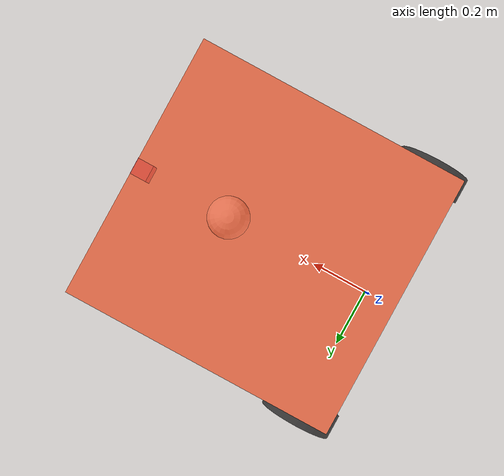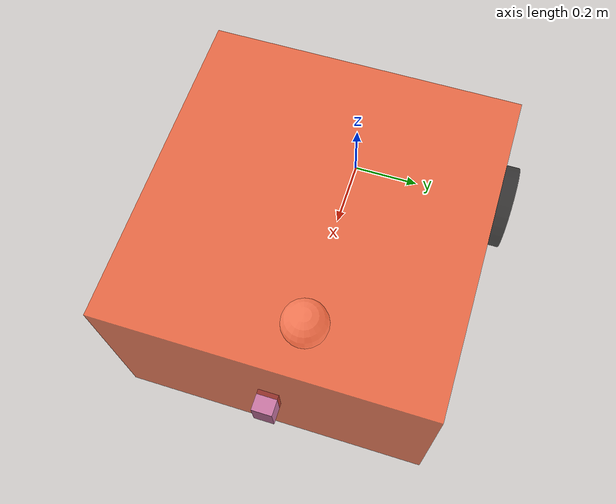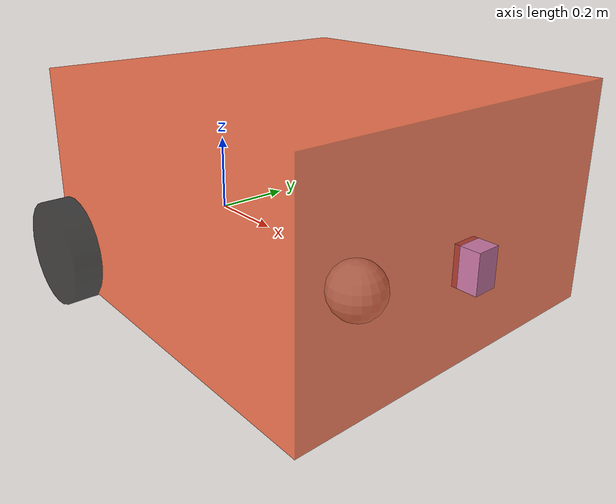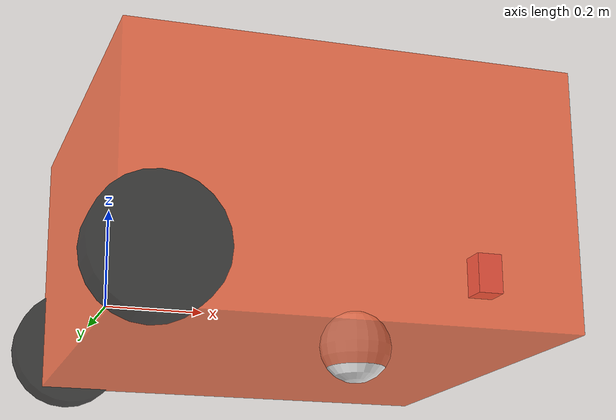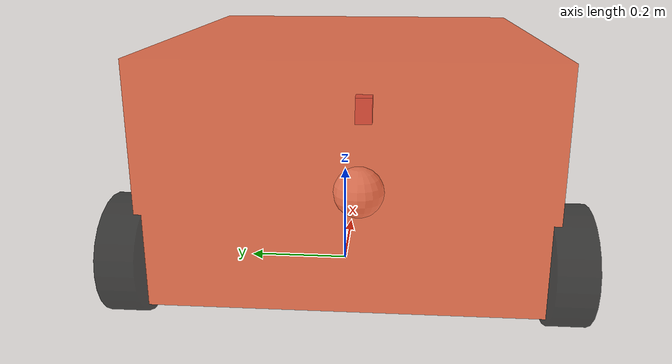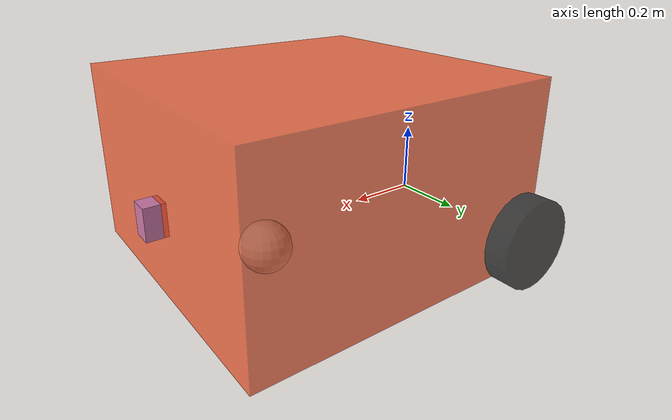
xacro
<?xml version="1.0"?>
<robot xmlns:xacro="http://www.ros.org/wiki/xacro"  name="sweeper">

    <xacro:include filename="robot_core.xacro"/>
    <xacro:include filename="ros2_control.xacro" />
    <xacro:include filename="sick.xacro" />

</robot>

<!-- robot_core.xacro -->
<robot name="sweeper" xmlns:xacro="http://ros.org/wiki/xacro">

  <xacro:include filename="intertial_macros.xacro"/>

  <!-- Define robot constants -->
  <xacro:property name="chassis_width" value="0.8636"/>
  <xacro:property name="chassis_length" value="0.889"/>
  <xacro:property name="chassis_height" value="0.527"/>
  <xacro:property name="chassis_mass" value="5"/>

  <xacro:property name="wheel_radius" value="0.127"/>
  <xacro:property name="wheel_thickness" value="0.0823"/>
  <xacro:property name="wheel_offset_y" value=".457"/>
  <xacro:property name="wheel_offset_z" value="0.0"/> <!--not used-->
  <xacro:property name="wheel_offset_x" value="0.0"/> <!--not used-->
  <xacro:property name="wheel_mass" value=".5"/>

  <xacro:property name="caster_wheel_mass" value=".2"/>
  <xacro:property name="caster_wheel_radius" value="0.0762"/>
  <xacro:property name="caster_wheel_offset_z" value="0.0445"/> <!-- (1.75") lowest point of chassis to center of caster wheel-->
  <xacro:property name="caster_wheel_offset_x" value=".597"/>

  <!-- chasis bottom point is the back bottom metal frame near the motors -->
  <!-- mass inaccurate, only matters for simulation -->

  <!-- colors for RViz visualization-->
  <material name="white">
    <color rgba="1 1 1 1" />
  </material>
  <material name="orange">
    <color rgba="1 .3 .1 0.7" />
  </material>
  <material name="blue">
    <color rgba=".2 .2 1 1" />
  </material>
  <material name="black">
    <color rgba="0 0 0 0.7" />
  </material>
  <material name="red">
    <color rgba="1 0 0 1" />
  </material>

  <!-- base link-->
  <link name="base_link"/>

  <link name="base_footprint"/>

  <!-- base_footprint link-->
  <joint name="base_footprint_joint" type="fixed">
    <parent link="base_link"/>
    <child link="base_footprint"/>
    <origin xyz="0 0 0" rpy="0 0 0"/>
  </joint>

  <!-- chassis link -->
  <joint name="chassis_joint" type="fixed">
    <parent link="base_link"/>
    <child link="chassis"/>
    <origin xyz="-.0635 0 -.0953"/>
  </joint>

  <link name="chassis">
    <visual>
      <origin xyz="${chassis_length/2} 0 ${chassis_height/2}"/>
      <geometry>
        <box size="${chassis_length} ${chassis_width} ${chassis_height}"/>
      </geometry>
      <material name="orange"/>
    </visual>
    <collision>
      <origin xyz="${chassis_length/2} 0 ${chassis_height/2}"/>
      <geometry>
        <box size="${chassis_length} ${chassis_width} ${chassis_height}"/>
      </geometry>
    </collision>
    <xacro:inertial_box mass="${chassis_mass}" x="${chassis_length}" y="${chassis_width}" z="${chassis_height}">
      <origin xyz="${chassis_length/2} 0 ${chassis_height/2}" rpy="0 0 0"/>
    </xacro:inertial_box>
  </link>

  <gazebo reference="chassis">
    <material>Gazebo/Orange</material>
  </gazebo>

  <!-- LEFT WHEEL LINK -->
  <joint name="left_wheel_joint" type="continuous"> <!-- change back to continuous-->
      <parent link="base_link"/>
      <child link="left_wheel"/>
      <origin xyz="0 ${wheel_offset_y} 0" rpy="-${pi/2} 0 0" />
      <axis xyz="0 0 1"/>
  </joint>

  <link name="left_wheel">
      <visual>
          <geometry>
              <cylinder radius="${wheel_radius}" length="${wheel_thickness}"/>
          </geometry>
          <material name="black"/>
      </visual>
      <collision>
          <geometry>
              <cylinder radius="${wheel_radius}" length="${wheel_thickness}"/>
          </geometry>
      </collision>
      <xacro:inertial_cylinder mass="${wheel_mass}" length="${wheel_thickness}" radius="${wheel_radius}">
          <origin xyz="0 0 0" rpy="0 0 0"/>
      </xacro:inertial_cylinder>
  </link>

  <gazebo reference="left_wheel">
      <material>Gazebo/Black</material>
  </gazebo>

  <!-- RIGHT WHEEL LINK -->
  <joint name="right_wheel_joint" type="continuous"> <!-- change back to continuous-->
      <parent link="base_link"/>
      <child link="right_wheel"/>
      <origin xyz="0 ${-wheel_offset_y} 0" rpy="${pi/2} 0 0" />
      <axis xyz="0 0 -1"/>
  </joint>

  <link name="right_wheel">
      <visual>
          <geometry>
              <cylinder radius="${wheel_radius}" length="${wheel_thickness}"/>
          </geometry>
          <material name="black"/>
      </visual>
      <collision>
          <geometry>
              <cylinder radius="${wheel_radius}" length="${wheel_thickness}"/>
          </geometry>
      </collision>
      <xacro:inertial_cylinder mass="${wheel_mass}" length="${wheel_thickness}" radius="${wheel_radius}">
          <origin xyz="0 0 0" rpy="0 0 0"/>
      </xacro:inertial_cylinder>
  </link>

  <gazebo reference="right_wheel">
      <material>Gazebo/Black</material>
  </gazebo>

  <!-- CASTER WHEEL LINK -->
  <joint name="caster_wheel_joint" type="fixed">
      <parent link="chassis"/>
      <child link="caster_wheel"/>
      <origin xyz="${caster_wheel_offset_x} 0 ${caster_wheel_offset_z}"/>
  </joint>

  <link name="caster_wheel">
      <visual>
          <geometry>
              <sphere radius="${caster_wheel_radius}"/>
          </geometry>
          <material name="white"/>
      </visual>
      <collision>
          <geometry>
              <sphere radius="${caster_wheel_radius}"/>
          </geometry>
      </collision>
      <xacro:inertial_sphere mass="${caster_wheel_mass}" radius="${caster_wheel_radius}">
          <origin xyz="0 0 0" rpy="0 0 0"/>
      </xacro:inertial_sphere>
  </link>

  <gazebo reference="caster_wheel">
      <material>Gazebo/White</material>
      <mu1 value="0.001"/>
      <mu2 value="0.001"/>
  </gazebo>

</robot>

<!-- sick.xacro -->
<robot name="sweeper" xmlns:xacro="http://ros.org/wiki/xacro">

    <xacro:property name="realsense_offset_z" value=".210"/>    <!--8.25" (center of realsense to chasis low point)-->

    <link name="sick_link">
    <visual>
        <origin xyz="${.057/2} 0 0" rpy="0 0 0"/>
        <geometry>
        <box size="0.057 0.057 0.089"/>
        </geometry>
    </visual>

    <collision>
        <origin xyz="0 0 0" rpy="0 0 0"/>
        <geometry>
        <box size="0.057 0.057 0.089"/>
        </geometry>
    </collision>

    <inertial>
        <origin xyz="0 0 0" rpy="0 0 0"/>
        <mass value="0.035"/>
        <inertia ixx="0.001"  ixy="0"  ixz="0" iyy="0.001" iyz="0" izz="0.001" />
    </inertial>
    </link>

    <joint name="sick_joint" type="fixed">
        <parent link="base_link"/>
        <child link="sick_link"/>
        <origin xyz=".813 0 .127" rpy="0 0 0"/>
    </joint>

    <link name="sick_lidar_frame"/>

    <joint name="sick_frame_joint" type="fixed">
        <origin xyz="0 0 0" rpy="0 0 0"/>
        <parent link="sick_link"/>
        <child link="sick_lidar_frame"/>
    </joint>
</robot>
